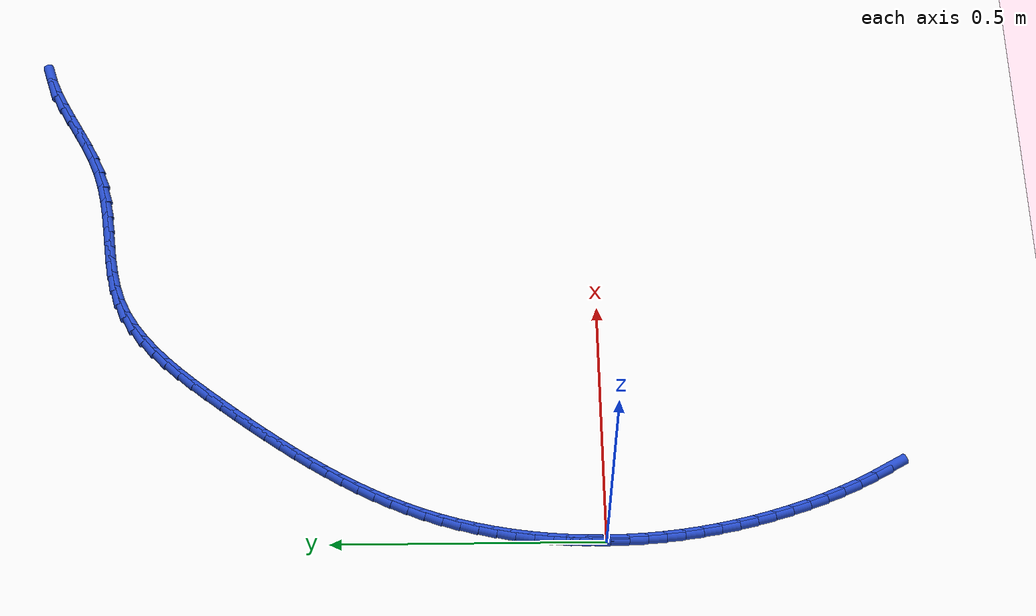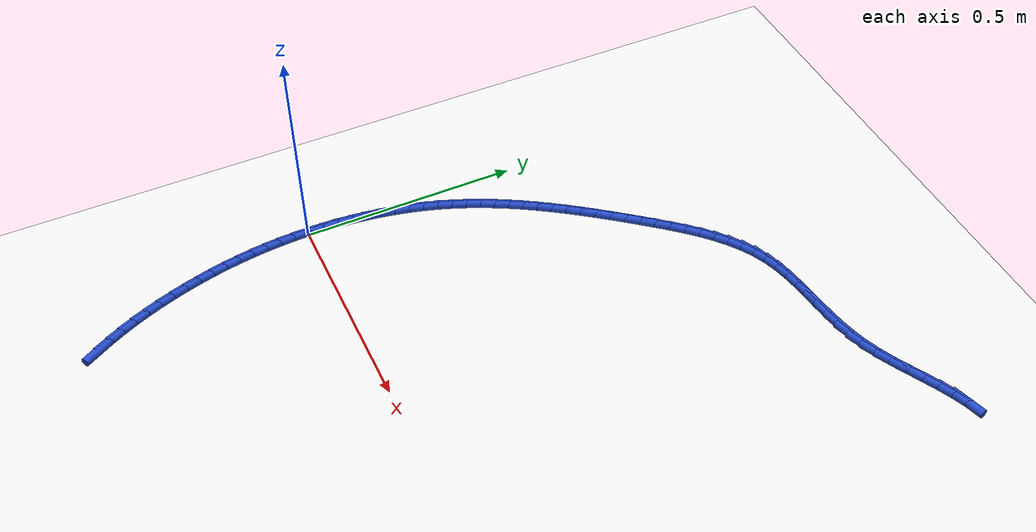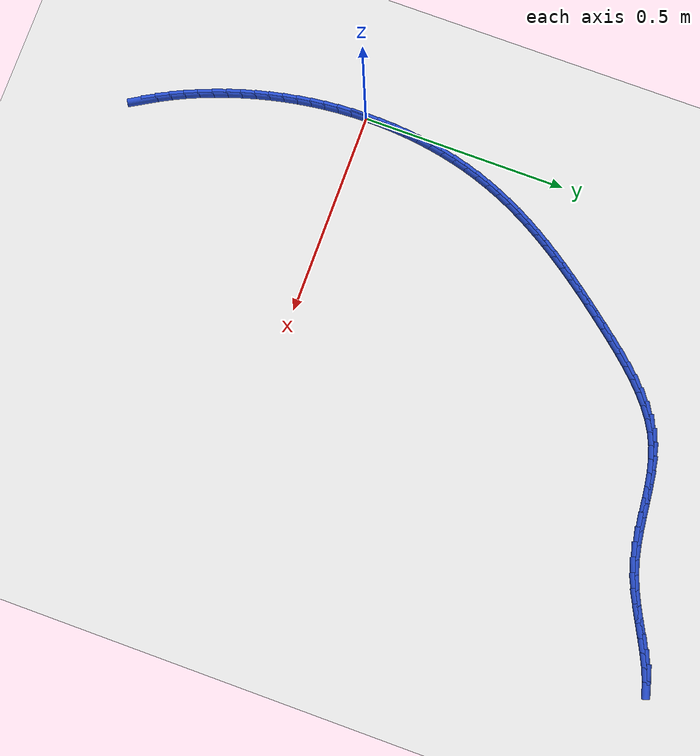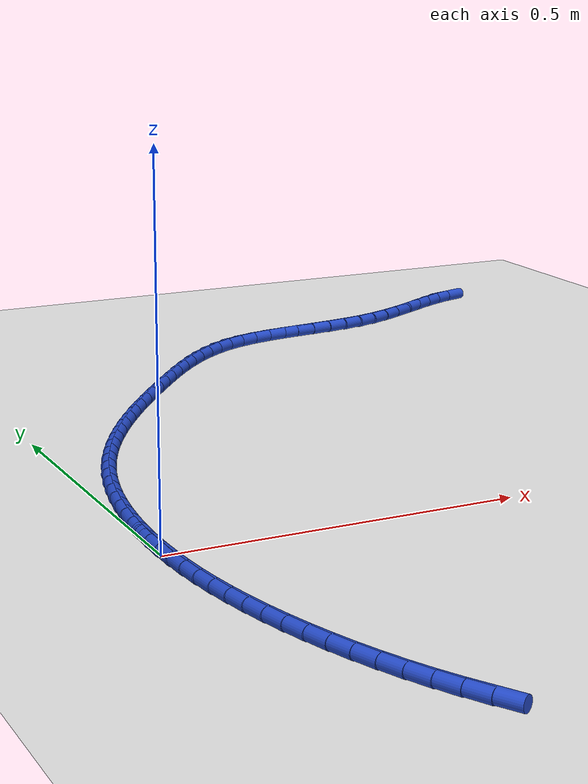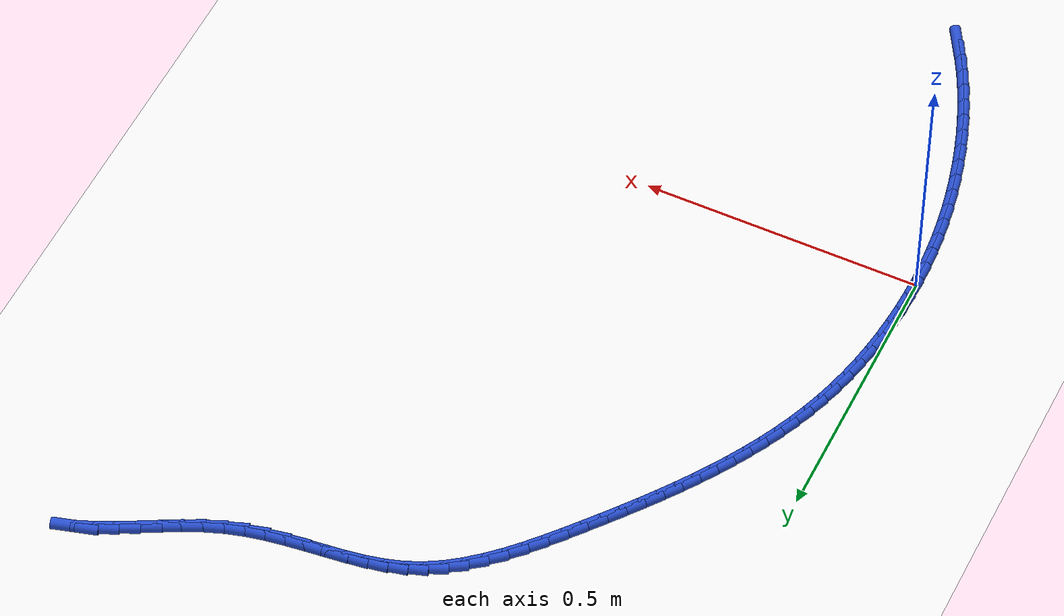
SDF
<sdf version="1.6">
 <world name="default">
  <model name="ground_plane">
   <static>1</static>
   <link name="link">
    <collision name="collision">
     <geometry><plane><normal>0 0 1</normal><size>100 100</size></plane></geometry>
     <surface><friction><ode><mu>100</mu><mu2>50</mu2></ode></friction></surface>
    </collision>
    <visual name="visual">
     <cast_shadows>0</cast_shadows>
     <geometry><plane><normal>0 0 1</normal><size>100 100</size></plane></geometry>
     <material>
      <script><uri>file://media/materials/scripts/gazebo.material</uri><name>Gazebo/WhiteGlow</name></script>
     </material>
    </visual>
   </link>
  </model>
  <model name="line">
   <link name="link_0">
    <pose>-2.6020852139652106e-17 -1.3877787807814457e-17 0.01 0 1.57 1.559780961232367</pose>
    <collision name="collision">
     <geometry><cylinder><radius>0.01</radius><length>0.08</length></cylinder></geometry>
    </collision>
    <visual name="visual">
     <material>
      <script><name>Gazebo/Blue</name><uri>file://media/materials/scripts/gazebo.material</uri></script>
     </material>
     <geometry><cylinder><radius>0.01</radius><length>0.08</length></cylinder></geometry>
    </visual>
   </link>
   <link name="link_1">
    <pose>0.00037335531843853863 0.033892676138004445 0.01 0 1.57 1.52627941986492</pose>
    <collision name="collision">
     <geometry><cylinder><radius>0.01</radius><length>0.08</length></cylinder></geometry>
    </collision>
    <visual name="visual">
     <material>
      <script><name>Gazebo/Blue</name><uri>file://media/materials/scripts/gazebo.material</uri></script>
     </material>
     <geometry><cylinder><radius>0.01</radius><length>0.08</length></cylinder></geometry>
    </visual>
   </link>
   <link name="link_2">
    <pose>0.0018848433492593577 0.06782336757025806 0.01 0 1.57 1.4922728739020221</pose>
    <collision name="collision">
     <geometry><cylinder><radius>0.01</radius><length>0.08</length></cylinder></geometry>
    </collision>
    <visual name="visual">
     <material>
      <script><name>Gazebo/Blue</name><uri>file://media/materials/scripts/gazebo.material</uri></script>
     </material>
     <geometry><cylinder><radius>0.01</radius><length>0.08</length></cylinder></geometry>
    </visual>
   </link>
   <link name="link_3">
    <pose>0.004551370837857322 0.10171190142126983 0.01 0 1.57 1.4576042625756793</pose>
    <collision name="collision">
     <geometry><cylinder><radius>0.01</radius><length>0.08</length></cylinder></geometry>
    </collision>
    <visual name="visual">
     <material>
      <script><name>Gazebo/Blue</name><uri>file://media/materials/scripts/gazebo.material</uri></script>
     </material>
     <geometry><cylinder><radius>0.01</radius><length>0.08</length></cylinder></geometry>
    </visual>
   </link>
   <link name="link_4">
    <pose>0.008389844529627322 0.13547810481554898 0.01 0 1.57 1.4221170095015294</pose>
    <collision name="collision">
     <geometry><cylinder><radius>0.01</radius><length>0.08</length></cylinder></geometry>
    </collision>
    <visual name="visual">
     <material>
      <script><name>Gazebo/Blue</name><uri>file://media/materials/scripts/gazebo.material</uri></script>
     </material>
     <geometry><cylinder><radius>0.01</radius><length>0.08</length></cylinder></geometry>
    </visual>
   </link>
   <link name="link_5">
    <pose>0.01341717116996424 0.1690418048776044 0.01 0 1.57 1.3856546378873562</pose>
    <collision name="collision">
     <geometry><cylinder><radius>0.01</radius><length>0.08</length></cylinder></geometry>
    </collision>
    <visual name="visual">
     <material>
      <script><name>Gazebo/Blue</name><uri>file://media/materials/scripts/gazebo.material</uri></script>
     </material>
     <geometry><cylinder><radius>0.01</radius><length>0.08</length></cylinder></geometry>
    </visual>
   </link>
   <link name="link_6">
    <pose>0.019650257504262966 0.20232282873194538 0.01 0 1.57 1.3480608006173773</pose>
    <collision name="collision">
     <geometry><cylinder><radius>0.01</radius><length>0.08</length></cylinder></geometry>
    </collision>
    <visual name="visual">
     <material>
      <script><name>Gazebo/Blue</name><uri>file://media/materials/scripts/gazebo.material</uri></script>
     </material>
     <geometry><cylinder><radius>0.01</radius><length>0.08</length></cylinder></geometry>
    </visual>
   </link>
   <link name="link_7">
    <pose>0.02710601027791841 0.235241003503081 0.01 0 1.57 1.3091798150484968</pose>
    <collision name="collision">
     <geometry><cylinder><radius>0.01</radius><length>0.08</length></cylinder></geometry>
    </collision>
    <visual name="visual">
     <material>
      <script><name>Gazebo/Blue</name><uri>file://media/materials/scripts/gazebo.material</uri></script>
     </material>
     <geometry><cylinder><radius>0.01</radius><length>0.08</length></cylinder></geometry>
    </visual>
   </link>
   <link name="link_8">
    <pose>0.03580133623632542 0.2677161563155202 0.01 0 1.57 1.268857812504629</pose>
    <collision name="collision">
     <geometry><cylinder><radius>0.01</radius><length>0.08</length></cylinder></geometry>
    </collision>
    <visual name="visual">
     <material>
      <script><name>Gazebo/Blue</name><uri>file://media/materials/scripts/gazebo.material</uri></script>
     </material>
     <geometry><cylinder><radius>0.01</radius><length>0.08</length></cylinder></geometry>
    </visual>
   </link>
   <link name="link_9">
    <pose>0.04575314212487891 0.2996681142937721 0.01 0 1.57 1.227158904093968</pose>
    <collision name="collision">
     <geometry><cylinder><radius>0.01</radius><length>0.08</length></cylinder></geometry>
    </collision>
    <visual name="visual">
     <material>
      <script><name>Gazebo/Blue</name><uri>file://media/materials/scripts/gazebo.material</uri></script>
     </material>
     <geometry><cylinder><radius>0.01</radius><length>0.08</length></cylinder></geometry>
    </visual>
   </link>
   <link name="link_10">
    <pose>0.056973408680713884 0.33102411542477467 0.01 0 1.57 1.1862209524761103</pose>
    <collision name="collision">
     <geometry><cylinder><radius>0.01</radius><length>0.08</length></cylinder></geometry>
    </collision>
    <visual name="visual">
     <material>
      <script><name>Gazebo/Blue</name><uri>file://media/materials/scripts/gazebo.material</uri></script>
     </material>
     <geometry><cylinder><radius>0.01</radius><length>0.08</length></cylinder></geometry>
    </visual>
   </link>
   <link name="link_11">
    <pose>0.06942394964834787 0.3617868707075126 0.01 0 1.57 1.147501665228237</pose>
    <collision name="collision">
     <geometry><cylinder><radius>0.01</radius><length>0.08</length></cylinder></geometry>
    </collision>
    <visual name="visual">
     <material>
      <script><name>Gazebo/Blue</name><uri>file://media/materials/scripts/gazebo.material</uri></script>
     </material>
     <geometry><cylinder><radius>0.01</radius><length>0.08</length></cylinder></geometry>
    </visual>
   </link>
   <link name="link_12">
    <pose>0.08303729271888705 0.3920031501237127 0.01 0 1.57 1.1112018715022376</pose>
    <collision name="collision">
     <geometry><cylinder><radius>0.01</radius><length>0.08</length></cylinder></geometry>
    </collision>
    <visual name="visual">
     <material>
      <script><name>Gazebo/Blue</name><uri>file://media/materials/scripts/gazebo.material</uri></script>
     </material>
     <geometry><cylinder><radius>0.01</radius><length>0.08</length></cylinder></geometry>
    </visual>
   </link>
   <link name="link_13">
    <pose>0.09774559889919408 0.4217202753079495 0.01 0 1.57 1.0774592304718202</pose>
    <collision name="collision">
     <geometry><cylinder><radius>0.01</radius><length>0.08</length></cylinder></geometry>
    </collision>
    <visual name="visual">
     <material>
      <script><name>Gazebo/Blue</name><uri>file://media/materials/scripts/gazebo.material</uri></script>
     </material>
     <geometry><cylinder><radius>0.01</radius><length>0.08</length></cylinder></geometry>
    </visual>
   </link>
   <link name="link_14">
    <pose>0.11348102919613148 0.45098556789479716 0.01 0 1.57 1.0463680497749548</pose>
    <collision name="collision">
     <geometry><cylinder><radius>0.01</radius><length>0.08</length></cylinder></geometry>
    </collision>
    <visual name="visual">
     <material>
      <script><name>Gazebo/Blue</name><uri>file://media/materials/scripts/gazebo.material</uri></script>
     </material>
     <geometry><cylinder><radius>0.01</radius><length>0.08</length></cylinder></geometry>
    </visual>
   </link>
   <link name="link_15">
    <pose>0.13017574461656184 0.4798463495188301 0.01 0 1.57 1.0179846152036736</pose>
    <collision name="collision">
     <geometry><cylinder><radius>0.01</radius><length>0.08</length></cylinder></geometry>
    </collision>
    <visual name="visual">
     <material>
      <script><name>Gazebo/Blue</name><uri>file://media/materials/scripts/gazebo.material</uri></script>
     </material>
     <geometry><cylinder><radius>0.01</radius><length>0.08</length></cylinder></geometry>
    </visual>
   </link>
   <link name="link_16">
    <pose>0.14776190616734775 0.5083499418146228 0.01 0 1.57 0.9923332720461119</pose>
    <collision name="collision">
     <geometry><cylinder><radius>0.01</radius><length>0.08</length></cylinder></geometry>
    </collision>
    <visual name="visual">
     <material>
      <script><name>Gazebo/Blue</name><uri>file://media/materials/scripts/gazebo.material</uri></script>
     </material>
     <geometry><cylinder><radius>0.01</radius><length>0.08</length></cylinder></geometry>
    </visual>
   </link>
   <link name="link_17">
    <pose>0.16617167485535186 0.5365436664167496 0.01 0 1.57 0.9694126702443309</pose>
    <collision name="collision">
     <geometry><cylinder><radius>0.01</radius><length>0.08</length></cylinder></geometry>
    </collision>
    <visual name="visual">
     <material>
      <script><name>Gazebo/Blue</name><uri>file://media/materials/scripts/gazebo.material</uri></script>
     </material>
     <geometry><cylinder><radius>0.01</radius><length>0.08</length></cylinder></geometry>
    </visual>
   </link>
   <link name="link_18">
    <pose>0.18533721168743666 0.5644748449597846 0.01 0 1.57 0.9492017358474267</pose>
    <collision name="collision">
     <geometry><cylinder><radius>0.01</radius><length>0.08</length></cylinder></geometry>
    </collision>
    <visual name="visual">
     <material>
      <script><name>Gazebo/Blue</name><uri>file://media/materials/scripts/gazebo.material</uri></script>
     </material>
     <geometry><cylinder><radius>0.01</radius><length>0.08</length></cylinder></geometry>
    </visual>
   </link>
   <link name="link_19">
    <pose>0.20519067767046487 0.5921907990783024 0.01 0 1.57 0.9316650804284664</pose>
    <collision name="collision">
     <geometry><cylinder><radius>0.01</radius><length>0.08</length></cylinder></geometry>
    </collision>
    <visual name="visual">
     <material>
      <script><name>Gazebo/Blue</name><uri>file://media/materials/scripts/gazebo.material</uri></script>
     </material>
     <geometry><cylinder><radius>0.01</radius><length>0.08</length></cylinder></geometry>
    </visual>
   </link>
   <link name="link_20">
    <pose>0.22566423381129905 0.6197388504068774 0.01 0 1.57 0.916757688448729</pose>
    <collision name="collision">
     <geometry><cylinder><radius>0.01</radius><length>0.08</length></cylinder></geometry>
    </collision>
    <visual name="visual">
     <material>
      <script><name>Gazebo/Blue</name><uri>file://media/materials/scripts/gazebo.material</uri></script>
     </material>
     <geometry><cylinder><radius>0.01</radius><length>0.08</length></cylinder></geometry>
    </visual>
   </link>
   <link name="link_21">
    <pose>0.2466900411168016 0.6471663205800836 0.01 0 1.57 0.9044288213493858</pose>
    <collision name="collision">
     <geometry><cylinder><radius>0.01</radius><length>0.08</length></cylinder></geometry>
    </collision>
    <visual name="visual">
     <material>
      <script><name>Gazebo/Blue</name><uri>file://media/materials/scripts/gazebo.material</uri></script>
     </material>
     <geometry><cylinder><radius>0.01</radius><length>0.08</length></cylinder></geometry>
    </visual>
   </link>
   <link name="link_22">
    <pose>0.2682002605938353 0.6745205312324958 0.01 0 1.57 0.8946251457050223</pose>
    <collision name="collision">
     <geometry><cylinder><radius>0.01</radius><length>0.08</length></cylinder></geometry>
    </collision>
    <visual name="visual">
     <material>
      <script><name>Gazebo/Blue</name><uri>file://media/materials/scripts/gazebo.material</uri></script>
     </material>
     <geometry><cylinder><radius>0.01</radius><length>0.08</length></cylinder></geometry>
    </visual>
   </link>
   <link name="link_23">
    <pose>0.29012705324926286 0.7018488039986885 0.01 0 1.57 0.8862440471785034</pose>
    <collision name="collision">
     <geometry><cylinder><radius>0.01</radius><length>0.08</length></cylinder></geometry>
    </collision>
    <visual name="visual">
     <material>
      <script><name>Gazebo/Blue</name><uri>file://media/materials/scripts/gazebo.material</uri></script>
     </material>
     <geometry><cylinder><radius>0.01</radius><length>0.08</length></cylinder></geometry>
    </visual>
   </link>
   <link name="link_24">
    <pose>0.3124186782380927 0.7291596617648045 0.01 0 1.57 0.8712839960348733</pose>
    <collision name="collision">
     <geometry><cylinder><radius>0.01</radius><length>0.08</length></cylinder></geometry>
    </collision>
    <visual name="visual">
     <material>
      <script><name>Gazebo/Blue</name><uri>file://media/materials/scripts/gazebo.material</uri></script>
     </material>
     <geometry><cylinder><radius>0.01</radius><length>0.08</length></cylinder></geometry>
    </visual>
   </link>
   <link name="link_25">
    <pose>0.33514514451881533 0.7561681936658553 0.01 0 1.57 0.8458424188517867</pose>
    <collision name="collision">
     <geometry><cylinder><radius>0.01</radius><length>0.08</length></cylinder></geometry>
    </collision>
    <visual name="visual">
     <material>
      <script><name>Gazebo/Blue</name><uri>file://media/materials/scripts/gazebo.material</uri></script>
     </material>
     <geometry><cylinder><radius>0.01</radius><length>0.08</length></cylinder></geometry>
    </visual>
   </link>
   <link name="link_26">
    <pose>0.3584321345426677 0.7824553080714783 0.01 0 1.57 0.8092626090625994</pose>
    <collision name="collision">
     <geometry><cylinder><radius>0.01</radius><length>0.08</length></cylinder></geometry>
    </collision>
    <visual name="visual">
     <material>
      <script><name>Gazebo/Blue</name><uri>file://media/materials/scripts/gazebo.material</uri></script>
     </material>
     <geometry><cylinder><radius>0.01</radius><length>0.08</length></cylinder></geometry>
    </visual>
   </link>
   <link name="link_27">
    <pose>0.3824056179377343 0.8076012212156577 0.01 0 1.57 0.7605738952245024</pose>
    <collision name="collision">
     <geometry><cylinder><radius>0.01</radius><length>0.08</length></cylinder></geometry>
    </collision>
    <visual name="visual">
     <material>
      <script><name>Gazebo/Blue</name><uri>file://media/materials/scripts/gazebo.material</uri></script>
     </material>
     <geometry><cylinder><radius>0.01</radius><length>0.08</length></cylinder></geometry>
    </visual>
   </link>
   <link name="link_28">
    <pose>0.4071915643321001 0.8311861493323789 0.01 0 1.57 0.6985613777045547</pose>
    <collision name="collision">
     <geometry><cylinder><radius>0.01</radius><length>0.08</length></cylinder></geometry>
    </collision>
    <visual name="visual">
     <material>
      <script><name>Gazebo/Blue</name><uri>file://media/materials/scripts/gazebo.material</uri></script>
     </material>
     <geometry><cylinder><radius>0.01</radius><length>0.08</length></cylinder></geometry>
    </visual>
   </link>
   <link name="link_29">
    <pose>0.43291594335384953 0.8527903086556259 0.01 0 1.57 0.6219470995186506</pose>
    <collision name="collision">
     <geometry><cylinder><radius>0.01</radius><length>0.08</length></cylinder></geometry>
    </collision>
    <visual name="visual">
     <material>
      <script><name>Gazebo/Blue</name><uri>file://media/materials/scripts/gazebo.material</uri></script>
     </material>
     <geometry><cylinder><radius>0.01</radius><length>0.08</length></cylinder></geometry>
    </visual>
   </link>
   <link name="link_30">
    <pose>0.45970472463106754 0.8719939154193841 0.01 0 1.57 0.5297287963512592</pose>
    <collision name="collision">
     <geometry><cylinder><radius>0.01</radius><length>0.08</length></cylinder></geometry>
    </collision>
    <visual name="visual">
     <material>
      <script><name>Gazebo/Blue</name><uri>file://media/materials/scripts/gazebo.material</uri></script>
     </material>
     <geometry><cylinder><radius>0.01</radius><length>0.08</length></cylinder></geometry>
    </visual>
   </link>
   <link name="link_31">
    <pose>0.4876838777918387 0.8883771858576377 0.01 0 1.57 0.42183444499736367</pose>
    <collision name="collision">
     <geometry><cylinder><radius>0.01</radius><length>0.08</length></cylinder></geometry>
    </collision>
    <visual name="visual">
     <material>
      <script><name>Gazebo/Blue</name><uri>file://media/materials/scripts/gazebo.material</uri></script>
     </material>
     <geometry><cylinder><radius>0.01</radius><length>0.08</length></cylinder></geometry>
    </visual>
   </link>
   <link name="link_32">
    <pose>0.5169783435127231 0.9015237990385596 0.01 0 1.57 0.3117104932592036</pose>
    <collision name="collision">
     <geometry><cylinder><radius>0.01</radius><length>0.08</length></cylinder></geometry>
    </collision>
    <visual name="visual">
     <material>
      <script><name>Gazebo/Blue</name><uri>file://media/materials/scripts/gazebo.material</uri></script>
     </material>
     <geometry><cylinder><radius>0.01</radius><length>0.08</length></cylinder></geometry>
    </visual>
   </link>
   <link name="link_33">
    <pose>0.5476020046357374 0.9113911881452095 0.01 0 1.57 0.2243934137685794</pose>
    <collision name="collision">
     <geometry><cylinder><radius>0.01</radius><length>0.08</length></cylinder></geometry>
    </collision>
    <visual name="visual">
     <material>
      <script><name>Gazebo/Blue</name><uri>file://media/materials/scripts/gazebo.material</uri></script>
     </material>
     <geometry><cylinder><radius>0.01</radius><length>0.08</length></cylinder></geometry>
    </visual>
   </link>
   <link name="link_34">
    <pose>0.5793599311999434 0.9186395251153273 0.01 0 1.57 0.16280593449440017</pose>
    <collision name="collision">
     <geometry><cylinder><radius>0.01</radius><length>0.08</length></cylinder></geometry>
    </collision>
    <visual name="visual">
     <material>
      <script><name>Gazebo/Blue</name><uri>file://media/materials/scripts/gazebo.material</uri></script>
     </material>
     <geometry><cylinder><radius>0.01</radius><length>0.08</length></cylinder></geometry>
    </visual>
   </link>
   <link name="link_35">
    <pose>0.6120341348242175 0.9240065827102517 0.01 0 1.57 0.1258885855052466</pose>
    <collision name="collision">
     <geometry><cylinder><radius>0.01</radius><length>0.08</length></cylinder></geometry>
    </collision>
    <visual name="visual">
     <material>
      <script><name>Gazebo/Blue</name><uri>file://media/materials/scripts/gazebo.material</uri></script>
     </material>
     <geometry><cylinder><radius>0.01</radius><length>0.08</length></cylinder></geometry>
    </visual>
   </link>
   <link name="link_36">
    <pose>0.645406627127435 0.9282301336913199 0.01 0 1.57 0.11230251354456235</pose>
    <collision name="collision">
     <geometry><cylinder><radius>0.01</radius><length>0.08</length></cylinder></geometry>
    </collision>
    <visual name="visual">
     <material>
      <script><name>Gazebo/Blue</name><uri>file://media/materials/scripts/gazebo.material</uri></script>
     </material>
     <geometry><cylinder><radius>0.01</radius><length>0.08</length></cylinder></geometry>
    </visual>
   </link>
   <link name="link_37">
    <pose>0.679259419728472 0.9320479508198698 0.01 0 1.57 0.12104806637049734</pose>
    <collision name="collision">
     <geometry><cylinder><radius>0.01</radius><length>0.08</length></cylinder></geometry>
    </collision>
    <visual name="visual">
     <material>
      <script><name>Gazebo/Blue</name><uri>file://media/materials/scripts/gazebo.material</uri></script>
     </material>
     <geometry><cylinder><radius>0.01</radius><length>0.08</length></cylinder></geometry>
    </visual>
   </link>
   <link name="link_38">
    <pose>0.7133745242462044 0.9361978068572392 0.01 0 1.57 0.15163026652183523</pose>
    <collision name="collision">
     <geometry><cylinder><radius>0.01</radius><length>0.08</length></cylinder></geometry>
    </collision>
    <visual name="visual">
     <material>
      <script><name>Gazebo/Blue</name><uri>file://media/materials/scripts/gazebo.material</uri></script>
     </material>
     <geometry><cylinder><radius>0.01</radius><length>0.08</length></cylinder></geometry>
    </visual>
   </link>
   <link name="link_39">
    <pose>0.7475339522995079 0.9414174745647663 0.01 0 1.57 0.20389706775973732</pose>
    <collision name="collision">
     <geometry><cylinder><radius>0.01</radius><length>0.08</length></cylinder></geometry>
    </collision>
    <visual name="visual">
     <material>
      <script><name>Gazebo/Blue</name><uri>file://media/materials/scripts/gazebo.material</uri></script>
     </material>
     <geometry><cylinder><radius>0.01</radius><length>0.08</length></cylinder></geometry>
    </visual>
   </link>
   <link name="link_40">
    <pose>0.7815197155072581 0.9484447267037881 0.01 0 1.57 0.2775920231942689</pose>
    <collision name="collision">
     <geometry><cylinder><radius>0.01</radius><length>0.08</length></cylinder></geometry>
    </collision>
    <visual name="visual">
     <material>
      <script><name>Gazebo/Blue</name><uri>file://media/materials/scripts/gazebo.material</uri></script>
     </material>
     <geometry><cylinder><radius>0.01</radius><length>0.08</length></cylinder></geometry>
    </visual>
   </link>
   <link name="link_41">
    <pose>0.8151138254883312 0.958017336035643 0.01 0 1.57 0.3641641509123342</pose>
    <collision name="collision">
     <geometry><cylinder><radius>0.01</radius><length>0.08</length></cylinder></geometry>
    </collision>
    <visual name="visual">
     <material>
      <script><name>Gazebo/Blue</name><uri>file://media/materials/scripts/gazebo.material</uri></script>
     </material>
     <geometry><cylinder><radius>0.01</radius><length>0.08</length></cylinder></geometry>
    </visual>
   </link>
   <link name="link_42">
    <pose>0.84814307829634 0.9706069135645822 0.01 0 1.57 0.4312037157909366</pose>
    <collision name="collision">
     <geometry><cylinder><radius>0.01</radius><length>0.08</length></cylinder></geometry>
    </collision>
    <visual name="visual">
     <material>
      <script><name>Gazebo/Blue</name><uri>file://media/materials/scripts/gazebo.material</uri></script>
     </material>
     <geometry><cylinder><radius>0.01</radius><length>0.08</length></cylinder></geometry>
    </visual>
   </link>
   <link name="link_43">
    <pose>0.8806250583468191 0.985551181569054 0.01 0 1.57 0.4719431314000235</pose>
    <collision name="collision">
     <geometry><cylinder><radius>0.01</radius><length>0.08</length></cylinder></geometry>
    </collision>
    <visual name="visual">
     <material>
      <script><name>Gazebo/Blue</name><uri>file://media/materials/scripts/gazebo.material</uri></script>
     </material>
     <geometry><cylinder><radius>0.01</radius><length>0.08</length></cylinder></geometry>
    </visual>
   </link>
   <link name="link_44">
    <pose>0.9126281467665751 1.0018859685555745 0.01 0 1.57 0.48778019546282586</pose>
    <collision name="collision">
     <geometry><cylinder><radius>0.01</radius><length>0.08</length></cylinder></geometry>
    </collision>
    <visual name="visual">
     <material>
      <script><name>Gazebo/Blue</name><uri>file://media/materials/scripts/gazebo.material</uri></script>
     </material>
     <geometry><cylinder><radius>0.01</radius><length>0.08</length></cylinder></geometry>
    </visual>
   </link>
   <link name="link_45">
    <pose>0.9442207251242934 1.0186471004045023 0.01 0 1.57 0.47884069125856493</pose>
    <collision name="collision">
     <geometry><cylinder><radius>0.01</radius><length>0.08</length></cylinder></geometry>
    </collision>
    <visual name="visual">
     <material>
      <script><name>Gazebo/Blue</name><uri>file://media/materials/scripts/gazebo.material</uri></script>
     </material>
     <geometry><cylinder><radius>0.01</radius><length>0.08</length></cylinder></geometry>
    </visual>
   </link>
   <link name="link_46">
    <pose>0.9754711749886591 1.0348704029961973 0.01 0 1.57 0.4436423172010366</pose>
    <collision name="collision">
     <geometry><cylinder><radius>0.01</radius><length>0.08</length></cylinder></geometry>
    </collision>
    <visual name="visual">
     <material>
      <script><name>Gazebo/Blue</name><uri>file://media/materials/scripts/gazebo.material</uri></script>
     </material>
     <geometry><cylinder><radius>0.01</radius><length>0.08</length></cylinder></geometry>
    </visual>
   </link>
   <link name="link_47">
    <pose>1.0064478779283572 1.0495917022110182 0.01 0 1.57 0.3790090907359172</pose>
    <collision name="collision">
     <geometry><cylinder><radius>0.01</radius><length>0.08</length></cylinder></geometry>
    </collision>
    <visual name="visual">
     <material>
      <script><name>Gazebo/Blue</name><uri>file://media/materials/scripts/gazebo.material</uri></script>
     </material>
     <geometry><cylinder><radius>0.01</radius><length>0.08</length></cylinder></geometry>
    </visual>
   </link>
   <link name="link_48">
    <pose>1.0372192155120725 1.0618468239293237 0.01 0 1.57 0.2804741701441501</pose>
    <collision name="collision">
     <geometry><cylinder><radius>0.01</radius><length>0.08</length></cylinder></geometry>
    </collision>
    <visual name="visual">
     <material>
      <script><name>Gazebo/Blue</name><uri>file://media/materials/scripts/gazebo.material</uri></script>
     </material>
     <geometry><cylinder><radius>0.01</radius><length>0.08</length></cylinder></geometry>
    </visual>
   </link>
   <link name="link_184">
    <pose>0.14151565891697668 -0.5174252424111927 0.01 0 1.57 -1.0427743291605975</pose>
    <collision name="collision">
     <geometry><cylinder><radius>0.01</radius><length>0.08</length></cylinder></geometry>
    </collision>
    <visual name="visual">
     <material>
      <script><name>Gazebo/Blue</name><uri>file://media/materials/scripts/gazebo.material</uri></script>
     </material>
     <geometry><cylinder><radius>0.01</radius><length>0.08</length></cylinder></geometry>
    </visual>
   </link>
   <link name="link_185">
    <pose>0.12453581579640259 -0.488313431705362 0.01 0 1.57 -1.0851722358108291</pose>
    <collision name="collision">
     <geometry><cylinder><radius>0.01</radius><length>0.08</length></cylinder></geometry>
    </collision>
    <visual name="visual">
     <material>
      <script><name>Gazebo/Blue</name><uri>file://media/materials/scripts/gazebo.material</uri></script>
     </material>
     <geometry><cylinder><radius>0.01</radius><length>0.08</length></cylinder></geometry>
    </visual>
   </link>
   <link name="link_186">
    <pose>0.10869779744061885 -0.4583047000458782 0.01 0 1.57 -1.1247816031518196</pose>
    <collision name="collision">
     <geometry><cylinder><radius>0.01</radius><length>0.08</length></cylinder></geometry>
    </collision>
    <visual name="visual">
     <material>
      <script><name>Gazebo/Blue</name><uri>file://media/materials/scripts/gazebo.material</uri></script>
     </material>
     <geometry><cylinder><radius>0.01</radius><length>0.08</length></cylinder></geometry>
    </visual>
   </link>
   <link name="link_187">
    <pose>0.09398253032256049 -0.42752923324469533 0.01 0 1.57 -1.1618961163512616</pose>
    <collision name="collision">
     <geometry><cylinder><radius>0.01</radius><length>0.08</length></cylinder></geometry>
    </collision>
    <visual name="visual">
     <material>
      <script><name>Gazebo/Blue</name><uri>file://media/materials/scripts/gazebo.material</uri></script>
     </material>
     <geometry><cylinder><radius>0.01</radius><length>0.08</length></cylinder></geometry>
    </visual>
   </link>
   <link name="link_188">
    <pose>0.08037094091516253 -0.39611721711376713 0.01 0 1.57 -1.1967987127293946</pose>
    <collision name="collision">
     <geometry><cylinder><radius>0.01</radius><length>0.08</length></cylinder></geometry>
    </collision>
    <visual name="visual">
     <material>
      <script><name>Gazebo/Blue</name><uri>file://media/materials/scripts/gazebo.material</uri></script>
     </material>
     <geometry><cylinder><radius>0.01</radius><length>0.08</length></cylinder></geometry>
    </visual>
   </link>
   <link name="link_189">
    <pose>0.06784395569136002 -0.36419883746504755 0.01 0 1.57 -1.2297597435382648</pose>
    <collision name="collision">
     <geometry><cylinder><radius>0.01</radius><length>0.08</length></cylinder></geometry>
    </collision>
    <visual name="visual">
     <material>
      <script><name>Gazebo/Blue</name><uri>file://media/materials/scripts/gazebo.material</uri></script>
     </material>
     <geometry><cylinder><radius>0.01</radius><length>0.08</length></cylinder></geometry>
    </visual>
   </link>
   <link name="link_190">
    <pose>0.056382501124087964 -0.3319042801104904 0.01 0 1.57 -1.261045346413117</pose>
    <collision name="collision">
     <geometry><cylinder><radius>0.01</radius><length>0.08</length></cylinder></geometry>
    </collision>
    <visual name="visual">
     <material>
      <script><name>Gazebo/Blue</name><uri>file://media/materials/scripts/gazebo.material</uri></script>
     </material>
     <geometry><cylinder><radius>0.01</radius><length>0.08</length></cylinder></geometry>
    </visual>
   </link>
   <link name="link_191">
    <pose>0.045967627265296 -0.2993631843978677 0.01 0 1.57 -1.2915343499608545</pose>
    <collision name="collision">
     <geometry><cylinder><radius>0.01</radius><length>0.08</length></cylinder></geometry>
    </collision>
    <visual name="visual">
     <material>
      <script><name>Gazebo/Blue</name><uri>file://media/materials/scripts/gazebo.material</uri></script>
     </material>
     <geometry><cylinder><radius>0.01</radius><length>0.08</length></cylinder></geometry>
    </visual>
   </link>
   <link name="link_192">
    <pose>0.03659025408004245 -0.2666615450965423 0.01 0 1.57 -1.3224024452430494</pose>
    <collision name="collision">
     <geometry><cylinder><radius>0.01</radius><length>0.08</length></cylinder></geometry>
    </collision>
    <visual name="visual">
     <material>
      <script><name>Gazebo/Blue</name><uri>file://media/materials/scripts/gazebo.material</uri></script>
     </material>
     <geometry><cylinder><radius>0.01</radius><length>0.08</length></cylinder></geometry>
    </visual>
   </link>
   <link name="link_193">
    <pose>0.028258208688852218 -0.2338105938382097 0.01 0 1.57 -1.3537249323808866</pose>
    <collision name="collision">
     <geometry><cylinder><radius>0.01</radius><length>0.08</length></cylinder></geometry>
    </collision>
    <visual name="visual">
     <material>
      <script><name>Gazebo/Blue</name><uri>file://media/materials/scripts/gazebo.material</uri></script>
     </material>
     <geometry><cylinder><radius>0.01</radius><length>0.08</length></cylinder></geometry>
    </visual>
   </link>
   <link name="link_194">
    <pose>0.020980978363341007 -0.20081422109627906 0.01 0 1.57 -1.3854608820453864</pose>
    <collision name="collision">
     <geometry><cylinder><radius>0.01</radius><length>0.08</length></cylinder></geometry>
    </collision>
    <visual name="visual">
     <material>
      <script><name>Gazebo/Blue</name><uri>file://media/materials/scripts/gazebo.material</uri></script>
     </material>
     <geometry><cylinder><radius>0.01</radius><length>0.08</length></cylinder></geometry>
    </visual>
   </link>
   <link name="link_195">
    <pose>0.014768050375124304 -0.1676763173441587 0.01 0 1.57 -1.4175650760789025</pose>
    <collision name="collision">
     <geometry><cylinder><radius>0.01</radius><length>0.08</length></cylinder></geometry>
    </collision>
    <visual name="visual">
     <material>
      <script><name>Gazebo/Blue</name><uri>file://media/materials/scripts/gazebo.material</uri></script>
     </material>
     <geometry><cylinder><radius>0.01</radius><length>0.08</length></cylinder></geometry>
    </visual>
   </link>
   <link name="link_196">
    <pose>0.009628911995817575 -0.13440077305525683 0.01 0 1.57 -1.4499882955724077</pose>
    <collision name="collision">
     <geometry><cylinder><radius>0.01</radius><length>0.08</length></cylinder></geometry>
    </collision>
    <visual name="visual">
     <material>
      <script><name>Gazebo/Blue</name><uri>file://media/materials/scripts/gazebo.material</uri></script>
     </material>
     <geometry><cylinder><radius>0.01</radius><length>0.08</length></cylinder></geometry>
    </visual>
   </link>
   <link name="link_197">
    <pose>0.005573050497036299 -0.10099147870298168 0.01 0 1.57 -1.4826777057253453</pose>
    <collision name="collision">
     <geometry><cylinder><radius>0.01</radius><length>0.08</length></cylinder></geometry>
    </collision>
    <visual name="visual">
     <material>
      <script><name>Gazebo/Blue</name><uri>file://media/materials/scripts/gazebo.material</uri></script>
     </material>
     <geometry><cylinder><radius>0.01</radius><length>0.08</length></cylinder></geometry>
    </visual>
   </link>
   <link name="link_198">
    <pose>0.0026099531503959612 -0.06745232476074173 0.01 0 1.57 -1.5155773332331726</pose>
    <collision name="collision">
     <geometry><cylinder><radius>0.01</radius><length>0.08</length></cylinder></geometry>
    </collision>
    <visual name="visual">
     <material>
      <script><name>Gazebo/Blue</name><uri>file://media/materials/scripts/gazebo.material</uri></script>
     </material>
     <geometry><cylinder><radius>0.01</radius><length>0.08</length></cylinder></geometry>
    </visual>
   </link>
   <link name="link_199">
    <pose>0.0007491072275120293 -0.033787201701945116 0.01 0 1.57 -1.5486286277762742</pose>
    <collision name="collision">
     <geometry><cylinder><radius>0.01</radius><length>0.08</length></cylinder></geometry>
    </collision>
    <visual name="visual">
     <material>
      <script><name>Gazebo/Blue</name><uri>file://media/materials/scripts/gazebo.material</uri></script>
     </material>
     <geometry><cylinder><radius>0.01</radius><length>0.08</length></cylinder></geometry>
    </visual>
   </link>
   <link name="link_200">
    <pose>-1.0408340855860843e-17 -1.942890293094024e-16 0.01 0 1.57 1.5598215584542459</pose>
    <collision name="collision">
     <geometry><cylinder><radius>0.01</radius><length>0.08</length></cylinder></geometry>
    </collision>
    <visual name="visual">
     <material>
      <script><name>Gazebo/Blue</name><uri>file://media/materials/scripts/gazebo.material</uri></script>
     </material>
     <geometry><cylinder><radius>0.01</radius><length>0.08</length></cylinder></geometry>
    </visual>
   </link>
   <link name="link_201">
    <pose>0.00037211873947533974 0.0339053898716855 0.01 0 1.57 1.5598215584542454</pose>
    <collision name="collision">
     <geometry><cylinder><radius>0.01</radius><length>0.08</length></cylinder></geometry>
    </collision>
    <visual name="visual">
     <material>
      <script><name>Gazebo/Blue</name><uri>file://media/materials/scripts/gazebo.material</uri></script>
     </material>
     <geometry><cylinder><radius>0.01</radius><length>0.08</length></cylinder></geometry>
    </visual>
   </link>
  </model>
 </world>
</sdf>
